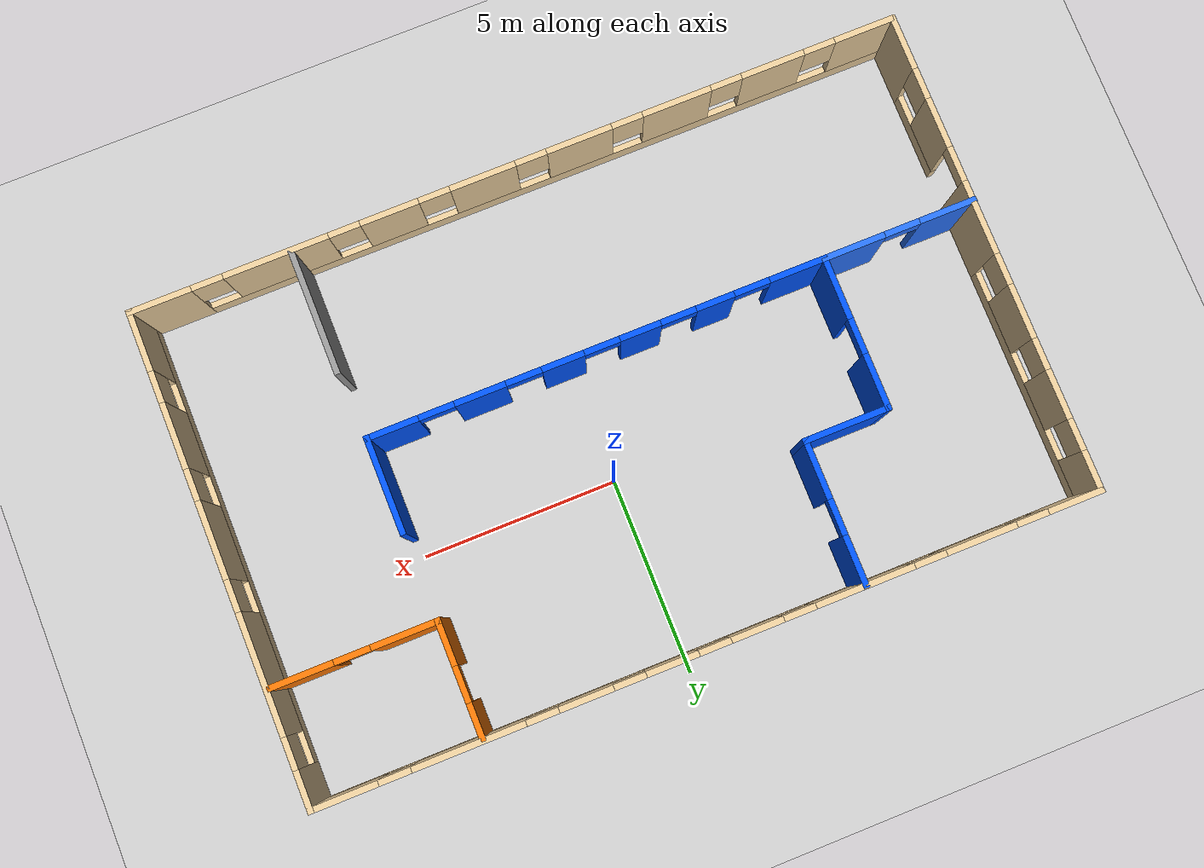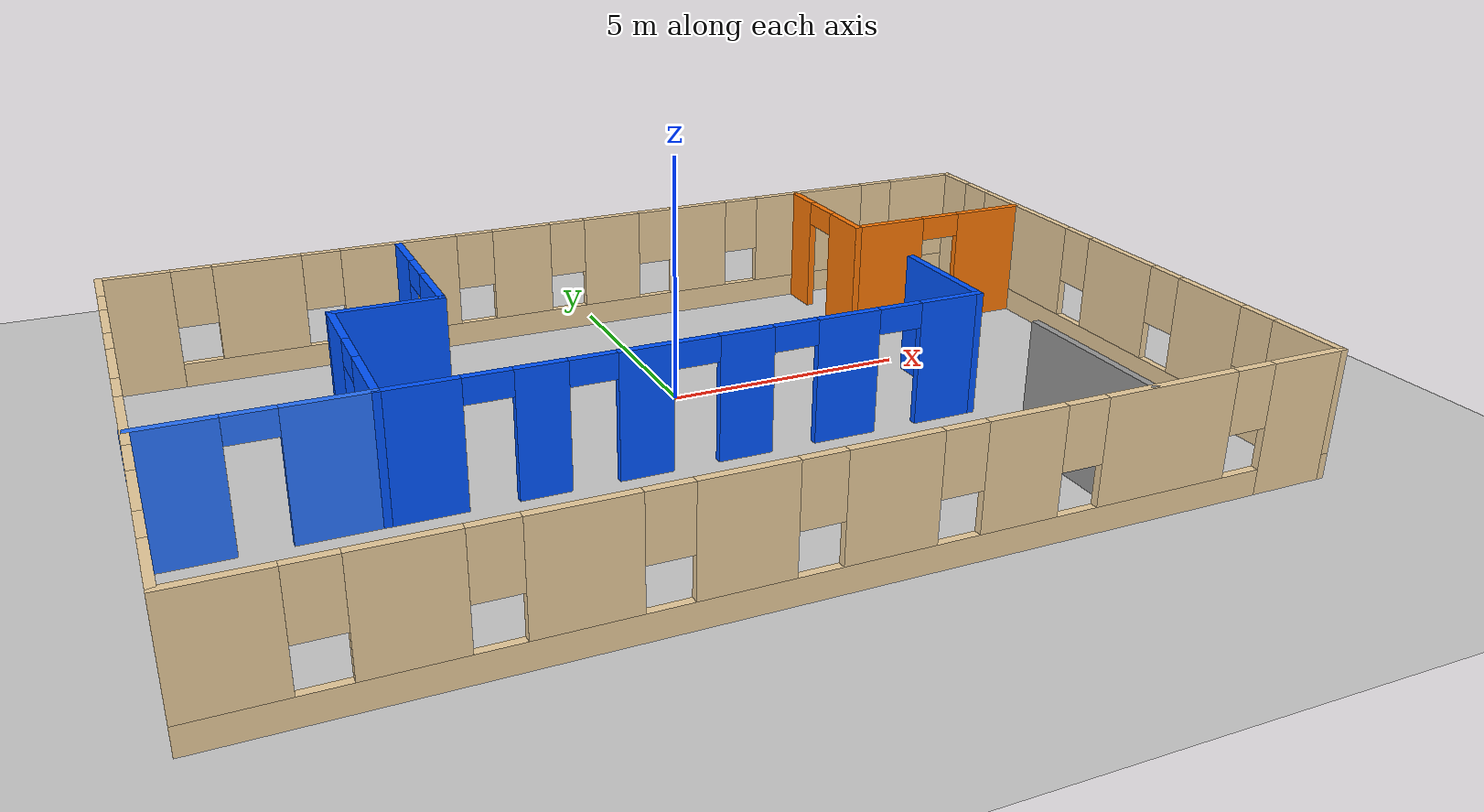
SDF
<sdf version="1.6">
 <world name="default">
  <model name="ground_plane">
   <static>1</static>
   <link name="link">
    <collision name="collision">
     <geometry><plane><normal>0 0 1</normal><size>100 100</size></plane></geometry>
     <surface>
      <contact><collide_bitmask>65535</collide_bitmask></contact>
      <friction><ode><mu>100</mu><mu2>50</mu2></ode></friction>
     </surface>
    </collision>
    <visual name="visual">
     <cast_shadows>0</cast_shadows>
     <geometry><plane><normal>0 0 1</normal><size>100 100</size></plane></geometry>
     <material>
      <script><uri>file://media/materials/scripts/gazebo.material</uri><name>Gazebo/Grey</name></script>
     </material>
    </visual>
   </link>
  </model>
  <model name="MyNewOffice">
   <pose>-0.570202 -1.58607 0 0 -0 0</pose>
   <link name="Wall_1">
    <pose>0.005308 6.175 0 0 0 -7e-06</pose>
    <visual name="Wall_1_Visual_0">
     <pose>-9.16553 0 1.25 0 -0 0</pose>
     <geometry><box><size>1.41894 0.15 2.5</size></box></geometry>
     <material>
      <script><uri>file://media/materials/scripts/gazebo.material</uri><name>Gazebo/Grey</name></script>
      <ambient>0.921569 0.807843 0.615686 1</ambient>
     </material>
     <meta><layer>0</layer></meta>
    </visual>
    <collision name="Wall_1_Collision_0">
     <geometry><box><size>1.41894 0.15 2.5</size></box></geometry>
     <pose>-9.16553 0 1.25 0 -0 0</pose>
    </collision>
    <visual name="Wall_1_Visual_1">
     <pose>0.709472 0 0.25 0 -0 0</pose>
     <geometry><box><size>18.3311 0.15 0.5</size></box></geometry>
     <material>
      <script><uri>file://media/materials/scripts/gazebo.material</uri><name>Gazebo/Grey</name></script>
      <ambient>0.921569 0.807843 0.615686 1</ambient>
     </material>
     <meta><layer>0</layer></meta>
    </visual>
    <collision name="Wall_1_Collision_1">
     <geometry><box><size>18.3311 0.15 0.5</size></box></geometry>
     <pose>0.709472 0 0.25 0 -0 0</pose>
    </collision>
    <visual name="Wall_1_Visual_2">
     <pose>-6.76938 0 1.5 0 -0 0</pose>
     <geometry><box><size>1.77334 0.15 2</size></box></geometry>
     <material>
      <script><uri>file://media/materials/scripts/gazebo.material</uri><name>Gazebo/Grey</name></script>
      <ambient>0.921569 0.807843 0.615686 1</ambient>
     </material>
     <meta><layer>0</layer></meta>
    </visual>
    <collision name="Wall_1_Collision_2">
     <geometry><box><size>1.77334 0.15 2</size></box></geometry>
     <pose>-6.76938 0 1.5 0 -0 0</pose>
    </collision>
    <visual name="Wall_1_Visual_3">
     <pose>-3.84513 0 1.5 0 -0 0</pose>
     <geometry><box><size>2.47517 0.15 2</size></box></geometry>
     <material>
      <script><uri>file://media/materials/scripts/gazebo.material</uri><name>Gazebo/Grey</name></script>
      <ambient>0.921569 0.807843 0.615686 1</ambient>
     </material>
     <meta><layer>0</layer></meta>
    </visual>
    <collision name="Wall_1_Collision_3">
     <geometry><box><size>2.47517 0.15 2</size></box></geometry>
     <pose>-3.84513 0 1.5 0 -0 0</pose>
    </collision>
    <visual name="Wall_1_Visual_4">
     <pose>-1.15481 0 1.5 0 -0 0</pose>
     <geometry><box><size>1.30546 0.15 2</size></box></geometry>
     <material>
      <script><uri>file://media/materials/scripts/gazebo.material</uri><name>Gazebo/Grey</name></script>
      <ambient>0.921569 0.807843 0.615686 1</ambient>
     </material>
     <meta><layer>0</layer></meta>
    </visual>
    <collision name="Wall_1_Collision_4">
     <geometry><box><size>1.30546 0.15 2</size></box></geometry>
     <pose>-1.15481 0 1.5 0 -0 0</pose>
    </collision>
    <visual name="Wall_1_Visual_5">
     <pose>0.950655 0 1.5 0 -0 0</pose>
     <geometry><box><size>1.30547 0.15 2</size></box></geometry>
     <material>
      <script><uri>file://media/materials/scripts/gazebo.material</uri><name>Gazebo/Grey</name></script>
      <ambient>0.921569 0.807843 0.615686 1</ambient>
     </material>
     <meta><layer>0</layer></meta>
    </visual>
    <collision name="Wall_1_Collision_5">
     <geometry><box><size>1.30547 0.15 2</size></box></geometry>
     <pose>0.950655 0 1.5 0 -0 0</pose>
    </collision>
    <visual name="Wall_1_Visual_6">
     <pose>3.07951 0 1.5 0 -0 0</pose>
     <geometry><box><size>1.35225 0.15 2</size></box></geometry>
     <material>
      <script><uri>file://media/materials/scripts/gazebo.material</uri><name>Gazebo/Grey</name></script>
      <ambient>0.921569 0.807843 0.615686 1</ambient>
     </material>
     <meta><layer>0</layer></meta>
    </visual>
    <collision name="Wall_1_Collision_6">
     <geometry><box><size>1.35225 0.15 2</size></box></geometry>
     <pose>3.07951 0 1.5 0 -0 0</pose>
    </collision>
    <visual name="Wall_1_Visual_7">
     <pose>5.95698 0 1.5 0 -0 0</pose>
     <geometry><box><size>2.80268 0.15 2</size></box></geometry>
     <material>
      <script><uri>file://media/materials/scripts/gazebo.material</uri><name>Gazebo/Grey</name></script>
      <ambient>0.921569 0.807843 0.615686 1</ambient>
     </material>
     <meta><layer>0</layer></meta>
    </visual>
    <collision name="Wall_1_Collision_7">
     <geometry><box><size>2.80268 0.15 2</size></box></geometry>
     <pose>5.95698 0 1.5 0 -0 0</pose>
    </collision>
    <visual name="Wall_1_Visual_8">
     <pose>9.01666 0 1.5 0 -0 0</pose>
     <geometry><box><size>1.71668 0.15 2</size></box></geometry>
     <material>
      <script><uri>file://media/materials/scripts/gazebo.material</uri><name>Gazebo/Grey</name></script>
      <ambient>0.921569 0.807843 0.615686 1</ambient>
     </material>
     <meta><layer>0</layer></meta>
    </visual>
    <collision name="Wall_1_Collision_8">
     <geometry><box><size>1.71668 0.15 2</size></box></geometry>
     <pose>9.01666 0 1.5 0 -0 0</pose>
    </collision>
    <visual name="Wall_1_Visual_9">
     <pose>-8.05606 0 1.9 0 -0 0</pose>
     <geometry><box><size>0.8 0.15 1.2</size></box></geometry>
     <material>
      <script><uri>file://media/materials/scripts/gazebo.material</uri><name>Gazebo/Grey</name></script>
      <ambient>0.921569 0.807843 0.615686 1</ambient>
     </material>
     <meta><layer>0</layer></meta>
    </visual>
    <collision name="Wall_1_Collision_9">
     <geometry><box><size>0.8 0.15 1.2</size></box></geometry>
     <pose>-8.05606 0 1.9 0 -0 0</pose>
    </collision>
    <visual name="Wall_1_Visual_10">
     <pose>-5.48271 0 1.9 0 -0 0</pose>
     <geometry><box><size>0.8 0.15 1.2</size></box></geometry>
     <material>
      <script><uri>file://media/materials/scripts/gazebo.material</uri><name>Gazebo/Grey</name></script>
      <ambient>0.921569 0.807843 0.615686 1</ambient>
     </material>
     <meta><layer>0</layer></meta>
    </visual>
    <collision name="Wall_1_Collision_10">
     <geometry><box><size>0.8 0.15 1.2</size></box></geometry>
     <pose>-5.48271 0 1.9 0 -0 0</pose>
    </collision>
    <visual name="Wall_1_Visual_11">
     <pose>-2.20754 0 1.9 0 -0 0</pose>
     <geometry><box><size>0.8 0.15 1.2</size></box></geometry>
     <material>
      <script><uri>file://media/materials/scripts/gazebo.material</uri><name>Gazebo/Grey</name></script>
      <ambient>0.921569 0.807843 0.615686 1</ambient>
     </material>
     <meta><layer>0</layer></meta>
    </visual>
    <collision name="Wall_1_Collision_11">
     <geometry><box><size>0.8 0.15 1.2</size></box></geometry>
     <pose>-2.20754 0 1.9 0 -0 0</pose>
    </collision>
    <visual name="Wall_1_Visual_12">
     <pose>-0.102078 0 1.9 0 -0 0</pose>
     <geometry><box><size>0.8 0.15 1.2</size></box></geometry>
     <material>
      <script><uri>file://media/materials/scripts/gazebo.material</uri><name>Gazebo/Grey</name></script>
      <ambient>0.921569 0.807843 0.615686 1</ambient>
     </material>
     <meta><layer>0</layer></meta>
    </visual>
    <collision name="Wall_1_Collision_12">
     <geometry><box><size>0.8 0.15 1.2</size></box></geometry>
     <pose>-0.102078 0 1.9 0 -0 0</pose>
    </collision>
    <visual name="Wall_1_Visual_13">
     <pose>2.00339 0 1.9 0 -0 0</pose>
     <geometry><box><size>0.8 0.15 1.2</size></box></geometry>
     <material>
      <script><uri>file://media/materials/scripts/gazebo.material</uri><name>Gazebo/Grey</name></script>
      <ambient>0.921569 0.807843 0.615686 1</ambient>
     </material>
     <meta><layer>0</layer></meta>
    </visual>
    <collision name="Wall_1_Collision_13">
     <geometry><box><size>0.8 0.15 1.2</size></box></geometry>
     <pose>2.00339 0 1.9 0 -0 0</pose>
    </collision>
    <visual name="Wall_1_Visual_14">
     <pose>4.15564 0 1.9 0 -0 0</pose>
     <geometry><box><size>0.8 0.15 1.2</size></box></geometry>
     <material>
      <script><uri>file://media/materials/scripts/gazebo.material</uri><name>Gazebo/Grey</name></script>
      <ambient>0.921569 0.807843 0.615686 1</ambient>
     </material>
     <meta><layer>0</layer></meta>
    </visual>
    <collision name="Wall_1_Collision_14">
     <geometry><box><size>0.8 0.15 1.2</size></box></geometry>
     <pose>4.15564 0 1.9 0 -0 0</pose>
    </collision>
    <visual name="Wall_1_Visual_15">
     <pose>7.75832 0 1.9 0 -0 0</pose>
     <geometry><box><size>0.8 0.15 1.2</size></box></geometry>
     <material>
      <script><uri>file://media/materials/scripts/gazebo.material</uri><name>Gazebo/Grey</name></script>
      <ambient>0.921569 0.807843 0.615686 1</ambient>
     </material>
     <meta><layer>0</layer></meta>
    </visual>
    <collision name="Wall_1_Collision_15">
     <geometry><box><size>0.8 0.15 1.2</size></box></geometry>
     <pose>7.75832 0 1.9 0 -0 0</pose>
    </collision>
   </link>
   <link name="Wall_13">
    <pose>-3.85542 4.35663 0 0 0 -1.5708</pose>
    <visual name="Wall_13_Visual_0">
     <pose>-1.22116 0 1.25 0 -0 0</pose>
     <geometry><box><size>1.30769 0.15 2.5</size></box></geometry>
     <material>
      <script><uri>file://media/materials/scripts/gazebo.material</uri><name>Gazebo/Grey</name></script>
      <ambient>0 0.333333 1 1</ambient>
     </material>
     <meta><layer>0</layer></meta>
    </visual>
    <collision name="Wall_13_Collision_0">
     <geometry><box><size>1.30769 0.15 2.5</size></box></geometry>
     <pose>-1.22116 0 1.25 0 -0 0</pose>
    </collision>
    <visual name="Wall_13_Visual_1">
     <pose>1.10384 0 1.25 0 -0 0</pose>
     <geometry><box><size>1.54231 0.15 2.5</size></box></geometry>
     <material>
      <script><uri>file://media/materials/scripts/gazebo.material</uri><name>Gazebo/Grey</name></script>
      <ambient>0 0.333333 1 1</ambient>
     </material>
     <meta><layer>0</layer></meta>
    </visual>
    <collision name="Wall_13_Collision_1">
     <geometry><box><size>1.54231 0.15 2.5</size></box></geometry>
     <pose>1.10384 0 1.25 0 -0 0</pose>
    </collision>
    <visual name="Wall_13_Visual_2">
     <pose>-0.117314 0 2.25 0 -0 0</pose>
     <geometry><box><size>0.9 0.15 0.5</size></box></geometry>
     <material>
      <script><uri>file://media/materials/scripts/gazebo.material</uri><name>Gazebo/Grey</name></script>
      <ambient>0 0.333333 1 1</ambient>
     </material>
     <meta><layer>0</layer></meta>
    </visual>
    <collision name="Wall_13_Collision_2">
     <geometry><box><size>0.9 0.15 0.5</size></box></geometry>
     <pose>-0.117314 0 2.25 0 -0 0</pose>
    </collision>
   </link>
   <link name="Wall_14">
    <collision name="Wall_14_Collision">
     <geometry><box><size>2.25 0.15 2.5</size></box></geometry>
     <pose>0 0 1.25 0 -0 0</pose>
    </collision>
    <visual name="Wall_14_Visual">
     <pose>0 0 1.25 0 -0 0</pose>
     <geometry><box><size>2.25 0.15 2.5</size></box></geometry>
     <material>
      <script><uri>file://media/materials/scripts/gazebo.material</uri><name>Gazebo/Grey</name></script>
      <ambient>0 0.333333 1 1</ambient>
     </material>
     <meta><layer>0</layer></meta>
    </visual>
    <pose>-4.90542 2.55662 0 0 -0 3.14159</pose>
   </link>
   <link name="Wall_15">
    <pose>-5.95542 0.631625 0 0 0 -1.5708</pose>
    <visual name="Wall_15_Visual_0">
     <pose>-1.2711 0 1.25 0 -0 0</pose>
     <geometry><box><size>1.45781 0.15 2.5</size></box></geometry>
     <material>
      <script><uri>file://media/materials/scripts/gazebo.material</uri><name>Gazebo/Grey</name></script>
      <ambient>0 0.333333 1 1</ambient>
     </material>
     <meta><layer>0</layer></meta>
    </visual>
    <collision name="Wall_15_Collision_0">
     <geometry><box><size>1.45781 0.15 2.5</size></box></geometry>
     <pose>-1.2711 0 1.25 0 -0 0</pose>
    </collision>
    <visual name="Wall_15_Visual_1">
     <pose>1.17891 0 1.25 0 -0 0</pose>
     <geometry><box><size>1.64219 0.15 2.5</size></box></geometry>
     <material>
      <script><uri>file://media/materials/scripts/gazebo.material</uri><name>Gazebo/Grey</name></script>
      <ambient>0 0.333333 1 1</ambient>
     </material>
     <meta><layer>0</layer></meta>
    </visual>
    <collision name="Wall_15_Collision_1">
     <geometry><box><size>1.64219 0.15 2.5</size></box></geometry>
     <pose>1.17891 0 1.25 0 -0 0</pose>
    </collision>
    <visual name="Wall_15_Visual_2">
     <pose>-0.09219 0 2.25 0 -0 0</pose>
     <geometry><box><size>0.9 0.15 0.5</size></box></geometry>
     <material>
      <script><uri>file://media/materials/scripts/gazebo.material</uri><name>Gazebo/Grey</name></script>
      <ambient>0 0.333333 1 1</ambient>
     </material>
     <meta><layer>0</layer></meta>
    </visual>
    <collision name="Wall_15_Collision_2">
     <geometry><box><size>0.9 0.15 0.5</size></box></geometry>
     <pose>-0.09219 0 2.25 0 -0 0</pose>
    </collision>
   </link>
   <link name="Wall_16">
    <pose>-0.155416 -1.29337 0 0 -0 0</pose>
    <visual name="Wall_16_Visual_0">
     <pose>-5.12972 0 1.25 0 -0 0</pose>
     <geometry><box><size>1.49057 0.15 2.5</size></box></geometry>
     <material>
      <script><uri>file://media/materials/scripts/gazebo.material</uri><name>Gazebo/Grey</name></script>
      <ambient>0 0.333333 1 1</ambient>
     </material>
     <meta><layer>0</layer></meta>
    </visual>
    <collision name="Wall_16_Collision_0">
     <geometry><box><size>1.49057 0.15 2.5</size></box></geometry>
     <pose>-5.12972 0 1.25 0 -0 0</pose>
    </collision>
    <visual name="Wall_16_Visual_1">
     <pose>-2.9969 0 1.25 0 -0 0</pose>
     <geometry><box><size>0.975062 0.15 2.5</size></box></geometry>
     <material>
      <script><uri>file://media/materials/scripts/gazebo.material</uri><name>Gazebo/Grey</name></script>
      <ambient>0 0.333333 1 1</ambient>
     </material>
     <meta><layer>0</layer></meta>
    </visual>
    <collision name="Wall_16_Collision_1">
     <geometry><box><size>0.975062 0.15 2.5</size></box></geometry>
     <pose>-2.9969 0 1.25 0 -0 0</pose>
    </collision>
    <visual name="Wall_16_Visual_2">
     <pose>-1.08646 0 1.25 0 -0 0</pose>
     <geometry><box><size>1.04582 0.15 2.5</size></box></geometry>
     <material>
      <script><uri>file://media/materials/scripts/gazebo.material</uri><name>Gazebo/Grey</name></script>
      <ambient>0 0.333333 1 1</ambient>
     </material>
     <meta><layer>0</layer></meta>
    </visual>
    <collision name="Wall_16_Collision_2">
     <geometry><box><size>1.04582 0.15 2.5</size></box></geometry>
     <pose>-1.08646 0 1.25 0 -0 0</pose>
    </collision>
    <visual name="Wall_16_Visual_3">
     <pose>0.877051 0 1.25 0 -0 0</pose>
     <geometry><box><size>1.0812 0.15 2.5</size></box></geometry>
     <material>
      <script><uri>file://media/materials/scripts/gazebo.material</uri><name>Gazebo/Grey</name></script>
      <ambient>0 0.333333 1 1</ambient>
     </material>
     <meta><layer>0</layer></meta>
    </visual>
    <collision name="Wall_16_Collision_3">
     <geometry><box><size>1.0812 0.15 2.5</size></box></geometry>
     <pose>0.877051 0 1.25 0 -0 0</pose>
    </collision>
    <visual name="Wall_16_Visual_4">
     <pose>2.96438 0 1.25 0 -0 0</pose>
     <geometry><box><size>1.29347 0.15 2.5</size></box></geometry>
     <material>
      <script><uri>file://media/materials/scripts/gazebo.material</uri><name>Gazebo/Grey</name></script>
      <ambient>0 0.333333 1 1</ambient>
     </material>
     <meta><layer>0</layer></meta>
    </visual>
    <collision name="Wall_16_Collision_4">
     <geometry><box><size>1.29347 0.15 2.5</size></box></geometry>
     <pose>2.96438 0 1.25 0 -0 0</pose>
    </collision>
    <visual name="Wall_16_Visual_5">
     <pose>5.19306 0 1.25 0 -0 0</pose>
     <geometry><box><size>1.36388 0.15 2.5</size></box></geometry>
     <material>
      <script><uri>file://media/materials/scripts/gazebo.material</uri><name>Gazebo/Grey</name></script>
      <ambient>0 0.333333 1 1</ambient>
     </material>
     <meta><layer>0</layer></meta>
    </visual>
    <collision name="Wall_16_Collision_5">
     <geometry><box><size>1.36388 0.15 2.5</size></box></geometry>
     <pose>5.19306 0 1.25 0 -0 0</pose>
    </collision>
    <visual name="Wall_16_Visual_6">
     <pose>-3.93443 0 2.25 0 -0 0</pose>
     <geometry><box><size>0.9 0.15 0.5</size></box></geometry>
     <material>
      <script><uri>file://media/materials/scripts/gazebo.material</uri><name>Gazebo/Grey</name></script>
      <ambient>0 0.333333 1 1</ambient>
     </material>
     <meta><layer>0</layer></meta>
    </visual>
    <collision name="Wall_16_Collision_6">
     <geometry><box><size>0.9 0.15 0.5</size></box></geometry>
     <pose>-3.93443 0 2.25 0 -0 0</pose>
    </collision>
    <visual name="Wall_16_Visual_7">
     <pose>-2.05937 0 2.25 0 -0 0</pose>
     <geometry><box><size>0.9 0.15 0.5</size></box></geometry>
     <material>
      <script><uri>file://media/materials/scripts/gazebo.material</uri><name>Gazebo/Grey</name></script>
      <ambient>0 0.333333 1 1</ambient>
     </material>
     <meta><layer>0</layer></meta>
    </visual>
    <collision name="Wall_16_Collision_7">
     <geometry><box><size>0.9 0.15 0.5</size></box></geometry>
     <pose>-2.05937 0 2.25 0 -0 0</pose>
    </collision>
    <visual name="Wall_16_Visual_8">
     <pose>-0.113548 0 2.25 0 -0 0</pose>
     <geometry><box><size>0.9 0.15 0.5</size></box></geometry>
     <material>
      <script><uri>file://media/materials/scripts/gazebo.material</uri><name>Gazebo/Grey</name></script>
      <ambient>0 0.333333 1 1</ambient>
     </material>
     <meta><layer>0</layer></meta>
    </visual>
    <collision name="Wall_16_Collision_8">
     <geometry><box><size>0.9 0.15 0.5</size></box></geometry>
     <pose>-0.113548 0 2.25 0 -0 0</pose>
    </collision>
    <visual name="Wall_16_Visual_9">
     <pose>1.86765 0 2.25 0 -0 0</pose>
     <geometry><box><size>0.9 0.15 0.5</size></box></geometry>
     <material>
      <script><uri>file://media/materials/scripts/gazebo.material</uri><name>Gazebo/Grey</name></script>
      <ambient>0 0.333333 1 1</ambient>
     </material>
     <meta><layer>0</layer></meta>
    </visual>
    <collision name="Wall_16_Collision_9">
     <geometry><box><size>0.9 0.15 0.5</size></box></geometry>
     <pose>1.86765 0 2.25 0 -0 0</pose>
    </collision>
    <visual name="Wall_16_Visual_10">
     <pose>4.06112 0 2.25 0 -0 0</pose>
     <geometry><box><size>0.9 0.15 0.5</size></box></geometry>
     <material>
      <script><uri>file://media/materials/scripts/gazebo.material</uri><name>Gazebo/Grey</name></script>
      <ambient>0 0.333333 1 1</ambient>
     </material>
     <meta><layer>0</layer></meta>
    </visual>
    <collision name="Wall_16_Collision_10">
     <geometry><box><size>0.9 0.15 0.5</size></box></geometry>
     <pose>4.06112 0 2.25 0 -0 0</pose>
    </collision>
   </link>
   <link name="Wall_17">
    <collision name="Wall_17_Collision">
     <geometry><box><size>2.5 0.15 2.5</size></box></geometry>
     <pose>0 0 1.25 0 -0 0</pose>
    </collision>
    <visual name="Wall_17_Visual">
     <pose>0 0 1.25 0 -0 0</pose>
     <geometry><box><size>2.5 0.15 2.5</size></box></geometry>
     <material>
      <script><uri>file://media/materials/scripts/gazebo.material</uri><name>Gazebo/Grey</name></script>
      <ambient>0 0.333333 1 1</ambient>
     </material>
     <meta><layer>0</layer></meta>
    </visual>
    <pose>5.64458 -0.118375 0 0 -0 1.5708</pose>
   </link>
   <link name="Wall_2">
    <pose>9.80541 -6.5e-05 0 0 0 -1.5708</pose>
    <visual name="Wall_2_Visual_0">
     <pose>-5.73242 0 1.25 0 -0 0</pose>
     <geometry><box><size>1.03516 0.15 2.5</size></box></geometry>
     <material>
      <script><uri>file://media/materials/scripts/gazebo.material</uri><name>Gazebo/Grey</name></script>
      <ambient>0.921569 0.807843 0.615686 1</ambient>
     </material>
     <meta><layer>0</layer></meta>
    </visual>
    <collision name="Wall_2_Collision_0">
     <geometry><box><size>1.03516 0.15 2.5</size></box></geometry>
     <pose>-5.73242 0 1.25 0 -0 0</pose>
    </collision>
    <visual name="Wall_2_Visual_1">
     <pose>0.517579 0 0.25 0 -0 0</pose>
     <geometry><box><size>11.4648 0.15 0.5</size></box></geometry>
     <material>
      <script><uri>file://media/materials/scripts/gazebo.material</uri><name>Gazebo/Grey</name></script>
      <ambient>0.921569 0.807843 0.615686 1</ambient>
     </material>
     <meta><layer>0</layer></meta>
    </visual>
    <collision name="Wall_2_Collision_1">
     <geometry><box><size>11.4648 0.15 0.5</size></box></geometry>
     <pose>0.517579 0 0.25 0 -0 0</pose>
    </collision>
    <visual name="Wall_2_Visual_2">
     <pose>-2.89653 0 1.5 0 -0 0</pose>
     <geometry><box><size>3.03662 0.15 2</size></box></geometry>
     <material>
      <script><uri>file://media/materials/scripts/gazebo.material</uri><name>Gazebo/Grey</name></script>
      <ambient>0.921569 0.807843 0.615686 1</ambient>
     </material>
     <meta><layer>0</layer></meta>
    </visual>
    <collision name="Wall_2_Collision_2">
     <geometry><box><size>3.03662 0.15 2</size></box></geometry>
     <pose>-2.89653 0 1.5 0 -0 0</pose>
    </collision>
    <visual name="Wall_2_Visual_3">
     <pose>0.402032 0 1.5 0 -0 0</pose>
     <geometry><box><size>1.9605 0.15 2</size></box></geometry>
     <material>
      <script><uri>file://media/materials/scripts/gazebo.material</uri><name>Gazebo/Grey</name></script>
      <ambient>0.921569 0.807843 0.615686 1</ambient>
     </material>
     <meta><layer>0</layer></meta>
    </visual>
    <collision name="Wall_2_Collision_3">
     <geometry><box><size>1.9605 0.15 2</size></box></geometry>
     <pose>0.402032 0 1.5 0 -0 0</pose>
    </collision>
    <visual name="Wall_2_Visual_4">
     <pose>3.02217 0 1.5 0 -0 0</pose>
     <geometry><box><size>1.67977 0.15 2</size></box></geometry>
     <material>
      <script><uri>file://media/materials/scripts/gazebo.material</uri><name>Gazebo/Grey</name></script>
      <ambient>0.921569 0.807843 0.615686 1</ambient>
     </material>
     <meta><layer>0</layer></meta>
    </visual>
    <collision name="Wall_2_Collision_4">
     <geometry><box><size>1.67977 0.15 2</size></box></geometry>
     <pose>3.02217 0 1.5 0 -0 0</pose>
    </collision>
    <visual name="Wall_2_Visual_5">
     <pose>5.45603 0 1.5 0 -0 0</pose>
     <geometry><box><size>1.58795 0.15 2</size></box></geometry>
     <material>
      <script><uri>file://media/materials/scripts/gazebo.material</uri><name>Gazebo/Grey</name></script>
      <ambient>0.921569 0.807843 0.615686 1</ambient>
     </material>
     <meta><layer>0</layer></meta>
    </visual>
    <collision name="Wall_2_Collision_5">
     <geometry><box><size>1.58795 0.15 2</size></box></geometry>
     <pose>5.45603 0 1.5 0 -0 0</pose>
    </collision>
    <visual name="Wall_2_Visual_6">
     <pose>-4.81484 0 1.9 0 -0 0</pose>
     <geometry><box><size>0.8 0.15 1.2</size></box></geometry>
     <material>
      <script><uri>file://media/materials/scripts/gazebo.material</uri><name>Gazebo/Grey</name></script>
      <ambient>0.921569 0.807843 0.615686 1</ambient>
     </material>
     <meta><layer>0</layer></meta>
    </visual>
    <collision name="Wall_2_Collision_6">
     <geometry><box><size>0.8 0.15 1.2</size></box></geometry>
     <pose>-4.81484 0 1.9 0 -0 0</pose>
    </collision>
    <visual name="Wall_2_Visual_7">
     <pose>-0.978217 0 1.9 0 -0 0</pose>
     <geometry><box><size>0.8 0.15 1.2</size></box></geometry>
     <material>
      <script><uri>file://media/materials/scripts/gazebo.material</uri><name>Gazebo/Grey</name></script>
      <ambient>0.921569 0.807843 0.615686 1</ambient>
     </material>
     <meta><layer>0</layer></meta>
    </visual>
    <collision name="Wall_2_Collision_7">
     <geometry><box><size>0.8 0.15 1.2</size></box></geometry>
     <pose>-0.978217 0 1.9 0 -0 0</pose>
    </collision>
    <visual name="Wall_2_Visual_8">
     <pose>1.78228 0 1.9 0 -0 0</pose>
     <geometry><box><size>0.8 0.15 1.2</size></box></geometry>
     <material>
      <script><uri>file://media/materials/scripts/gazebo.material</uri><name>Gazebo/Grey</name></script>
      <ambient>0.921569 0.807843 0.615686 1</ambient>
     </material>
     <meta><layer>0</layer></meta>
    </visual>
    <collision name="Wall_2_Collision_8">
     <geometry><box><size>0.8 0.15 1.2</size></box></geometry>
     <pose>1.78228 0 1.9 0 -0 0</pose>
    </collision>
    <visual name="Wall_2_Visual_9">
     <pose>4.26205 0 1.9 0 -0 0</pose>
     <geometry><box><size>0.8 0.15 1.2</size></box></geometry>
     <material>
      <script><uri>file://media/materials/scripts/gazebo.material</uri><name>Gazebo/Grey</name></script>
      <ambient>0.921569 0.807843 0.615686 1</ambient>
     </material>
     <meta><layer>0</layer></meta>
    </visual>
    <collision name="Wall_2_Collision_9">
     <geometry><box><size>0.8 0.15 1.2</size></box></geometry>
     <pose>4.26205 0 1.9 0 -0 0</pose>
    </collision>
   </link>
   <link name="Wall_20">
    <pose>5.61119 4.69117 0 0 0 -1.5708</pose>
    <visual name="Wall_20_Visual_0">
     <pose>-1.0368 0 1.25 0 -0 0</pose>
     <geometry><box><size>0.926393 0.15 2.5</size></box></geometry>
     <material>
      <script><uri>file://media/materials/scripts/gazebo.material</uri><name>Gazebo/Grey</name></script>
      <ambient>0.996078 0.47451 0.0196078 1</ambient>
     </material>
     <meta><layer>0</layer></meta>
    </visual>
    <collision name="Wall_20_Collision_0">
     <geometry><box><size>0.926393 0.15 2.5</size></box></geometry>
     <pose>-1.0368 0 1.25 0 -0 0</pose>
    </collision>
    <visual name="Wall_20_Visual_1">
     <pose>0.913196 0 1.25 0 -0 0</pose>
     <geometry><box><size>1.17361 0.15 2.5</size></box></geometry>
     <material>
      <script><uri>file://media/materials/scripts/gazebo.material</uri><name>Gazebo/Grey</name></script>
      <ambient>0.996078 0.47451 0.0196078 1</ambient>
     </material>
     <meta><layer>0</layer></meta>
    </visual>
    <collision name="Wall_20_Collision_1">
     <geometry><box><size>1.17361 0.15 2.5</size></box></geometry>
     <pose>0.913196 0 1.25 0 -0 0</pose>
    </collision>
    <visual name="Wall_20_Visual_2">
     <pose>-0.123607 0 2.25 0 -0 0</pose>
     <geometry><box><size>0.9 0.15 0.5</size></box></geometry>
     <material>
      <script><uri>file://media/materials/scripts/gazebo.material</uri><name>Gazebo/Grey</name></script>
      <ambient>0.996078 0.47451 0.0196078 1</ambient>
     </material>
     <meta><layer>0</layer></meta>
    </visual>
    <collision name="Wall_20_Collision_2">
     <geometry><box><size>0.9 0.15 0.5</size></box></geometry>
     <pose>-0.123607 0 2.25 0 -0 0</pose>
    </collision>
   </link>
   <link name="Wall_21">
    <pose>7.66119 3.26617 0 0 -0 0</pose>
    <visual name="Wall_21_Visual_0">
     <pose>-1.25967 0 1.25 0 -0 0</pose>
     <geometry><box><size>1.73065 0.15 2.5</size></box></geometry>
     <material>
      <script><uri>file://media/materials/scripts/gazebo.material</uri><name>Gazebo/Grey</name></script>
      <ambient>0.996078 0.47451 0.0196078 1</ambient>
     </material>
     <meta><layer>0</layer></meta>
    </visual>
    <collision name="Wall_21_Collision_0">
     <geometry><box><size>1.73065 0.15 2.5</size></box></geometry>
     <pose>-1.25967 0 1.25 0 -0 0</pose>
    </collision>
    <visual name="Wall_21_Visual_1">
     <pose>1.31533 0 1.25 0 -0 0</pose>
     <geometry><box><size>1.61935 0.15 2.5</size></box></geometry>
     <material>
      <script><uri>file://media/materials/scripts/gazebo.material</uri><name>Gazebo/Grey</name></script>
      <ambient>0.996078 0.47451 0.0196078 1</ambient>
     </material>
     <meta><layer>0</layer></meta>
    </visual>
    <collision name="Wall_21_Collision_1">
     <geometry><box><size>1.61935 0.15 2.5</size></box></geometry>
     <pose>1.31533 0 1.25 0 -0 0</pose>
    </collision>
    <visual name="Wall_21_Visual_2">
     <pose>0.055654 0 2.25 0 -0 0</pose>
     <geometry><box><size>0.9 0.15 0.5</size></box></geometry>
     <material>
      <script><uri>file://media/materials/scripts/gazebo.material</uri><name>Gazebo/Grey</name></script>
      <ambient>0.996078 0.47451 0.0196078 1</ambient>
     </material>
     <meta><layer>0</layer></meta>
    </visual>
    <collision name="Wall_21_Collision_2">
     <geometry><box><size>0.9 0.15 0.5</size></box></geometry>
     <pose>0.055654 0 2.25 0 -0 0</pose>
    </collision>
   </link>
   <link name="Wall_23">
    <collision name="Wall_23_Collision">
     <geometry><box><size>3.25 0.15 2.5</size></box></geometry>
     <pose>0 0 1.25 0 -0 0</pose>
    </collision>
    <visual name="Wall_23_Visual">
     <pose>0 0 1.25 0 -0 0</pose>
     <geometry><box><size>3.25 0.15 2.5</size></box></geometry>
     <material>
      <script><uri>file://media/materials/scripts/gazebo.material</uri><name>Gazebo/Grey</name></script>
      <ambient>1 1 1 1</ambient>
     </material>
     <meta><layer>0</layer></meta>
    </visual>
    <pose>5.74539 -4.58962 0 0 -0 1.5708</pose>
   </link>
   <link name="Wall_27">
    <pose>-7.88042 -1.29337 0 0 -0 3.14159</pose>
    <visual name="Wall_27_Visual_0">
     <pose>-1.18662 0 1.25 0 -0 0</pose>
     <geometry><box><size>1.62676 0.15 2.5</size></box></geometry>
     <material>
      <script><uri>file://media/materials/scripts/gazebo.material</uri><name>Gazebo/Grey</name></script>
      <ambient>0.160784 0.454902 1 1</ambient>
     </material>
     <meta><layer>0</layer></meta>
    </visual>
    <collision name="Wall_27_Collision_0">
     <geometry><box><size>1.62676 0.15 2.5</size></box></geometry>
     <pose>-1.18662 0 1.25 0 -0 0</pose>
    </collision>
    <visual name="Wall_27_Visual_1">
     <pose>1.26338 0 1.25 0 -0 0</pose>
     <geometry><box><size>1.47324 0.15 2.5</size></box></geometry>
     <material>
      <script><uri>file://media/materials/scripts/gazebo.material</uri><name>Gazebo/Grey</name></script>
      <ambient>0.160784 0.454902 1 1</ambient>
     </material>
     <meta><layer>0</layer></meta>
    </visual>
    <collision name="Wall_27_Collision_1">
     <geometry><box><size>1.47324 0.15 2.5</size></box></geometry>
     <pose>1.26338 0 1.25 0 -0 0</pose>
    </collision>
    <visual name="Wall_27_Visual_2">
     <pose>0.076756 0 2.25 0 -0 0</pose>
     <geometry><box><size>0.9 0.15 0.5</size></box></geometry>
     <material>
      <script><uri>file://media/materials/scripts/gazebo.material</uri><name>Gazebo/Grey</name></script>
      <ambient>0.160784 0.454902 1 1</ambient>
     </material>
     <meta><layer>0</layer></meta>
    </visual>
    <collision name="Wall_27_Collision_2">
     <geometry><box><size>0.9 0.15 0.5</size></box></geometry>
     <pose>0.076756 0 2.25 0 -0 0</pose>
    </collision>
   </link>
   <link name="Wall_3">
    <pose>0.005308 -6.175 0 0 -0 3.14159</pose>
    <visual name="Wall_3_Visual_0">
     <pose>-9.0635 0 1.25 0 -0 0</pose>
     <geometry><box><size>1.62321 0.15 2.5</size></box></geometry>
     <material>
      <script><uri>file://media/materials/scripts/gazebo.material</uri><name>Gazebo/Grey</name></script>
      <ambient>0.921569 0.807843 0.615686 1</ambient>
     </material>
     <meta><layer>0</layer></meta>
    </visual>
    <collision name="Wall_3_Collision_0">
     <geometry><box><size>1.62321 0.15 2.5</size></box></geometry>
     <pose>-9.0635 0 1.25 0 -0 0</pose>
    </collision>
    <visual name="Wall_3_Visual_1">
     <pose>0.811603 0 0.25 0 -0 0</pose>
     <geometry><box><size>18.127 0.15 0.5</size></box></geometry>
     <material>
      <script><uri>file://media/materials/scripts/gazebo.material</uri><name>Gazebo/Grey</name></script>
      <ambient>0.921569 0.807843 0.615686 1</ambient>
     </material>
     <meta><layer>0</layer></meta>
    </visual>
    <collision name="Wall_3_Collision_1">
     <geometry><box><size>18.127 0.15 0.5</size></box></geometry>
     <pose>0.811603 0 0.25 0 -0 0</pose>
    </collision>
    <visual name="Wall_3_Visual_2">
     <pose>-6.12074 0 1.5 0 -0 0</pose>
     <geometry><box><size>2.66232 0.15 2</size></box></geometry>
     <material>
      <script><uri>file://media/materials/scripts/gazebo.material</uri><name>Gazebo/Grey</name></script>
      <ambient>0.921569 0.807843 0.615686 1</ambient>
     </material>
     <meta><layer>0</layer></meta>
    </visual>
    <collision name="Wall_3_Collision_2">
     <geometry><box><size>2.66232 0.15 2</size></box></geometry>
     <pose>-6.12074 0 1.5 0 -0 0</pose>
    </collision>
    <visual name="Wall_3_Visual_3">
     <pose>-3.24327 0 1.5 0 -0 0</pose>
     <geometry><box><size>1.49262 0.15 2</size></box></geometry>
     <material>
      <script><uri>file://media/materials/scripts/gazebo.material</uri><name>Gazebo/Grey</name></script>
      <ambient>0.921569 0.807843 0.615686 1</ambient>
     </material>
     <meta><layer>0</layer></meta>
    </visual>
    <collision name="Wall_3_Collision_3">
     <geometry><box><size>1.49262 0.15 2</size></box></geometry>
     <pose>-3.24327 0 1.5 0 -0 0</pose>
    </collision>
    <visual name="Wall_3_Visual_4">
     <pose>-0.857078 0 1.5 0 -0 0</pose>
     <geometry><box><size>1.67977 0.15 2</size></box></geometry>
     <material>
      <script><uri>file://media/materials/scripts/gazebo.material</uri><name>Gazebo/Grey</name></script>
      <ambient>0.921569 0.807843 0.615686 1</ambient>
     </material>
     <meta><layer>0</layer></meta>
    </visual>
    <collision name="Wall_3_Collision_4">
     <geometry><box><size>1.67977 0.15 2</size></box></geometry>
     <pose>-0.857078 0 1.5 0 -0 0</pose>
    </collision>
    <visual name="Wall_3_Visual_5">
     <pose>1.62269 0 1.5 0 -0 0</pose>
     <geometry><box><size>1.67977 0.15 2</size></box></geometry>
     <material>
      <script><uri>file://media/materials/scripts/gazebo.material</uri><name>Gazebo/Grey</name></script>
      <ambient>0.921569 0.807843 0.615686 1</ambient>
     </material>
     <meta><layer>0</layer></meta>
    </visual>
    <collision name="Wall_3_Collision_5">
     <geometry><box><size>1.67977 0.15 2</size></box></geometry>
     <pose>1.62269 0 1.5 0 -0 0</pose>
    </collision>
    <visual name="Wall_3_Visual_6">
     <pose>4.14925 0 1.5 0 -0 0</pose>
     <geometry><box><size>1.77334 0.15 2</size></box></geometry>
     <material>
      <script><uri>file://media/materials/scripts/gazebo.material</uri><name>Gazebo/Grey</name></script>
      <ambient>0.921569 0.807843 0.615686 1</ambient>
     </material>
     <meta><layer>0</layer></meta>
    </visual>
    <collision name="Wall_3_Collision_6">
     <geometry><box><size>1.77334 0.15 2</size></box></geometry>
     <pose>4.14925 0 1.5 0 -0 0</pose>
    </collision>
    <visual name="Wall_3_Visual_7">
     <pose>6.65241 0 1.5 0 -0 0</pose>
     <geometry><box><size>1.63298 0.15 2</size></box></geometry>
     <material>
      <script><uri>file://media/materials/scripts/gazebo.material</uri><name>Gazebo/Grey</name></script>
      <ambient>0.921569 0.807843 0.615686 1</ambient>
     </material>
     <meta><layer>0</layer></meta>
    </visual>
    <collision name="Wall_3_Collision_7">
     <geometry><box><size>1.63298 0.15 2</size></box></geometry>
     <pose>6.65241 0 1.5 0 -0 0</pose>
    </collision>
    <visual name="Wall_3_Visual_8">
     <pose>9.07201 0 1.5 0 -0 0</pose>
     <geometry><box><size>1.6062 0.15 2</size></box></geometry>
     <material>
      <script><uri>file://media/materials/scripts/gazebo.material</uri><name>Gazebo/Grey</name></script>
      <ambient>0.921569 0.807843 0.615686 1</ambient>
     </material>
     <meta><layer>0</layer></meta>
    </visual>
    <collision name="Wall_3_Collision_8">
     <geometry><box><size>1.6062 0.15 2</size></box></geometry>
     <pose>9.07201 0 1.5 0 -0 0</pose>
    </collision>
    <visual name="Wall_3_Visual_9">
     <pose>-7.8519 0 1.9 0 -0 0</pose>
     <geometry><box><size>0.8 0.15 1.2</size></box></geometry>
     <material>
      <script><uri>file://media/materials/scripts/gazebo.material</uri><name>Gazebo/Grey</name></script>
      <ambient>0.921569 0.807843 0.615686 1</ambient>
     </material>
     <meta><layer>0</layer></meta>
    </visual>
    <collision name="Wall_3_Collision_9">
     <geometry><box><size>0.8 0.15 1.2</size></box></geometry>
     <pose>-7.8519 0 1.9 0 -0 0</pose>
    </collision>
    <visual name="Wall_3_Visual_10">
     <pose>-4.38958 0 1.9 0 -0 0</pose>
     <geometry><box><size>0.8 0.15 1.2</size></box></geometry>
     <material>
      <script><uri>file://media/materials/scripts/gazebo.material</uri><name>Gazebo/Grey</name></script>
      <ambient>0.921569 0.807843 0.615686 1</ambient>
     </material>
     <meta><layer>0</layer></meta>
    </visual>
    <collision name="Wall_3_Collision_10">
     <geometry><box><size>0.8 0.15 1.2</size></box></geometry>
     <pose>-4.38958 0 1.9 0 -0 0</pose>
    </collision>
    <visual name="Wall_3_Visual_11">
     <pose>-2.09696 0 1.9 0 -0 0</pose>
     <geometry><box><size>0.8 0.15 1.2</size></box></geometry>
     <material>
      <script><uri>file://media/materials/scripts/gazebo.material</uri><name>Gazebo/Grey</name></script>
      <ambient>0.921569 0.807843 0.615686 1</ambient>
     </material>
     <meta><layer>0</layer></meta>
    </visual>
    <collision name="Wall_3_Collision_11">
     <geometry><box><size>0.8 0.15 1.2</size></box></geometry>
     <pose>-2.09696 0 1.9 0 -0 0</pose>
    </collision>
    <visual name="Wall_3_Visual_12">
     <pose>0.382807 0 1.9 0 -0 0</pose>
     <geometry><box><size>0.8 0.15 1.2</size></box></geometry>
     <material>
      <script><uri>file://media/materials/scripts/gazebo.material</uri><name>Gazebo/Grey</name></script>
      <ambient>0.921569 0.807843 0.615686 1</ambient>
     </material>
     <meta><layer>0</layer></meta>
    </visual>
    <collision name="Wall_3_Collision_12">
     <geometry><box><size>0.8 0.15 1.2</size></box></geometry>
     <pose>0.382807 0 1.9 0 -0 0</pose>
    </collision>
    <visual name="Wall_3_Visual_13">
     <pose>2.86258 0 1.9 0 -0 0</pose>
     <geometry><box><size>0.8 0.15 1.2</size></box></geometry>
     <material>
      <script><uri>file://media/materials/scripts/gazebo.material</uri><name>Gazebo/Grey</name></script>
      <ambient>0.921569 0.807843 0.615686 1</ambient>
     </material>
     <meta><layer>0</layer></meta>
    </visual>
    <collision name="Wall_3_Collision_13">
     <geometry><box><size>0.8 0.15 1.2</size></box></geometry>
     <pose>2.86258 0 1.9 0 -0 0</pose>
    </collision>
    <visual name="Wall_3_Visual_14">
     <pose>5.43592 0 1.9 0 -0 0</pose>
     <geometry><box><size>0.8 0.15 1.2</size></box></geometry>
     <material>
      <script><uri>file://media/materials/scripts/gazebo.material</uri><name>Gazebo/Grey</name></script>
      <ambient>0.921569 0.807843 0.615686 1</ambient>
     </material>
     <meta><layer>0</layer></meta>
    </visual>
    <collision name="Wall_3_Collision_14">
     <geometry><box><size>0.8 0.15 1.2</size></box></geometry>
     <pose>5.43592 0 1.9 0 -0 0</pose>
    </collision>
    <visual name="Wall_3_Visual_15">
     <pose>7.8689 0 1.9 0 -0 0</pose>
     <geometry><box><size>0.8 0.15 1.2</size></box></geometry>
     <material>
      <script><uri>file://media/materials/scripts/gazebo.material</uri><name>Gazebo/Grey</name></script>
      <ambient>0.921569 0.807843 0.615686 1</ambient>
     </material>
     <meta><layer>0</layer></meta>
    </visual>
    <collision name="Wall_3_Collision_15">
     <geometry><box><size>0.8 0.15 1.2</size></box></geometry>
     <pose>7.8689 0 1.9 0 -0 0</pose>
    </collision>
   </link>
   <link name="Wall_4">
    <pose>-9.7948 6.6e-05 0 0 -0 1.5708</pose>
    <visual name="Wall_4_Visual_0">
     <pose>-5.52624 0 1.25 0 -0 0</pose>
     <geometry><box><size>1.44739 0.15 2.5</size></box></geometry>
     <material>
      <script><uri>file://media/materials/scripts/gazebo.material</uri><name>Gazebo/Grey</name></script>
      <ambient>0.921569 0.807843 0.615686 1</ambient>
     </material>
     <meta><layer>0</layer></meta>
    </visual>
    <collision name="Wall_4_Collision_0">
     <geometry><box><size>1.44739 0.15 2.5</size></box></geometry>
     <pose>-5.52624 0 1.25 0 -0 0</pose>
    </collision>
    <visual name="Wall_4_Visual_1">
     <pose>-0.845043 0 1.25 0 -0 0</pose>
     <geometry><box><size>1.9105 0.15 2.5</size></box></geometry>
     <material>
      <script><uri>file://media/materials/scripts/gazebo.material</uri><name>Gazebo/Grey</name></script>
      <ambient>0.921569 0.807843 0.615686 1</ambient>
     </material>
     <meta><layer>0</layer></meta>
    </visual>
    <collision name="Wall_4_Collision_1">
     <geometry><box><size>1.9105 0.15 2.5</size></box></geometry>
     <pose>-0.845043 0 1.25 0 -0 0</pose>
    </collision>
    <visual name="Wall_4_Visual_2">
     <pose>-3.75142 0 0.25 0 -0 0</pose>
     <geometry><box><size>2.10225 0.15 0.5</size></box></geometry>
     <material>
      <script><uri>file://media/materials/scripts/gazebo.material</uri><name>Gazebo/Grey</name></script>
      <ambient>0.921569 0.807843 0.615686 1</ambient>
     </material>
     <meta><layer>0</layer></meta>
    </visual>
    <collision name="Wall_4_Collision_2">
     <geometry><box><size>2.10225 0.15 0.5</size></box></geometry>
     <pose>-3.75142 0 0.25 0 -0 0</pose>
    </collision>
    <visual name="Wall_4_Visual_3">
     <pose>3.18007 0 0.25 0 -0 0</pose>
     <geometry><box><size>6.13973 0.15 0.5</size></box></geometry>
     <material>
      <script><uri>file://media/materials/scripts/gazebo.material</uri><name>Gazebo/Grey</name></script>
      <ambient>0.921569 0.807843 0.615686 1</ambient>
     </material>
     <meta><layer>0</layer></meta>
    </visual>
    <collision name="Wall_4_Collision_3">
     <geometry><box><size>6.13973 0.15 0.5</size></box></geometry>
     <pose>3.18007 0 0.25 0 -0 0</pose>
    </collision>
    <visual name="Wall_4_Visual_4">
     <pose>-3.35142 0 1.5 0 -0 0</pose>
     <geometry><box><size>1.30225 0.15 2</size></box></geometry>
     <material>
      <script><uri>file://media/materials/scripts/gazebo.material</uri><name>Gazebo/Grey</name></script>
      <ambient>0.921569 0.807843 0.615686 1</ambient>
     </material>
     <meta><layer>0</layer></meta>
    </visual>
    <collision name="Wall_4_Collision_4">
     <geometry><box><size>1.30225 0.15 2</size></box></geometry>
     <pose>-3.35142 0 1.5 0 -0 0</pose>
    </collision>
    <visual name="Wall_4_Visual_5">
     <pose>-3.35142 0 1.5 0 -0 0</pose>
     <geometry><box><size>1.30225 0.15 2</size></box></geometry>
     <material>
      <script><uri>file://media/materials/scripts/gazebo.material</uri><name>Gazebo/Grey</name></script>
      <ambient>0.921569 0.807843 0.615686 1</ambient>
     </material>
     <meta><layer>0</layer></meta>
    </visual>
    <collision name="Wall_4_Collision_5">
     <geometry><box><size>1.30225 0.15 2</size></box></geometry>
     <pose>-3.35142 0 1.5 0 -0 0</pose>
    </collision>
    <visual name="Wall_4_Visual_6">
     <pose>1.60973 0 1.5 0 -0 0</pose>
     <geometry><box><size>1.39904 0.15 2</size></box></geometry>
     <material>
      <script><uri>file://media/materials/scripts/gazebo.material</uri><name>Gazebo/Grey</name></script>
      <ambient>0.921569 0.807843 0.615686 1</ambient>
     </material>
     <meta><layer>0</layer></meta>
    </visual>
    <collision name="Wall_4_Collision_6">
     <geometry><box><size>1.39904 0.15 2</size></box></geometry>
     <pose>1.60973 0 1.5 0 -0 0</pose>
    </collision>
    <visual name="Wall_4_Visual_7">
     <pose>3.73859 0 1.5 0 -0 0</pose>
     <geometry><box><size>1.25868 0.15 2</size></box></geometry>
     <material>
      <script><uri>file://media/materials/scripts/gazebo.material</uri><name>Gazebo/Grey</name></script>
      <ambient>0.921569 0.807843 0.615686 1</ambient>
     </material>
     <meta><layer>0</layer></meta>
    </visual>
    <collision name="Wall_4_Collision_7">
     <geometry><box><size>1.25868 0.15 2</size></box></geometry>
     <pose>3.73859 0 1.5 0 -0 0</pose>
    </collision>
    <visual name="Wall_4_Visual_8">
     <pose>5.70893 0 1.5 0 -0 0</pose>
     <geometry><box><size>1.08201 0.15 2</size></box></geometry>
     <material>
      <script><uri>file://media/materials/scripts/gazebo.material</uri><name>Gazebo/Grey</name></script>
      <ambient>0.921569 0.807843 0.615686 1</ambient>
     </material>
     <meta><layer>0</layer></meta>
    </visual>
    <collision name="Wall_4_Collision_8">
     <geometry><box><size>1.08201 0.15 2</size></box></geometry>
     <pose>5.70893 0 1.5 0 -0 0</pose>
    </collision>
    <visual name="Wall_4_Visual_9">
     <pose>-4.40254 0 1.9 0 -0 0</pose>
     <geometry><box><size>0.8 0.15 1.2</size></box></geometry>
     <material>
      <script><uri>file://media/materials/scripts/gazebo.material</uri><name>Gazebo/Grey</name></script>
      <ambient>0.921569 0.807843 0.615686 1</ambient>
     </material>
     <meta><layer>0</layer></meta>
    </visual>
    <collision name="Wall_4_Collision_9">
     <geometry><box><size>0.8 0.15 1.2</size></box></geometry>
     <pose>-4.40254 0 1.9 0 -0 0</pose>
    </collision>
    <visual name="Wall_4_Visual_10">
     <pose>0.510206 0 1.9 0 -0 0</pose>
     <geometry><box><size>0.8 0.15 1.2</size></box></geometry>
     <material>
      <script><uri>file://media/materials/scripts/gazebo.material</uri><name>Gazebo/Grey</name></script>
      <ambient>0.921569 0.807843 0.615686 1</ambient>
     </material>
     <meta><layer>0</layer></meta>
    </visual>
    <collision name="Wall_4_Collision_10">
     <geometry><box><size>0.8 0.15 1.2</size></box></geometry>
     <pose>0.510206 0 1.9 0 -0 0</pose>
    </collision>
    <visual name="Wall_4_Visual_11">
     <pose>2.70925 0 1.9 0 -0 0</pose>
     <geometry><box><size>0.8 0.15 1.2</size></box></geometry>
     <material>
      <script><uri>file://media/materials/scripts/gazebo.material</uri><name>Gazebo/Grey</name></script>
      <ambient>0.921569 0.807843 0.615686 1</ambient>
     </material>
     <meta><layer>0</layer></meta>
    </visual>
    <collision name="Wall_4_Collision_11">
     <geometry><box><size>0.8 0.15 1.2</size></box></geometry>
     <pose>2.70925 0 1.9 0 -0 0</pose>
    </collision>
    <visual name="Wall_4_Visual_12">
     <pose>4.76792 0 1.9 0 -0 0</pose>
     <geometry><box><size>0.8 0.15 1.2</size></box></geometry>
     <material>
      <script><uri>file://media/materials/scripts/gazebo.material</uri><name>Gazebo/Grey</name></script>
      <ambient>0.921569 0.807843 0.615686 1</ambient>
     </material>
     <meta><layer>0</layer></meta>
    </visual>
    <collision name="Wall_4_Collision_12">
     <geometry><box><size>0.8 0.15 1.2</size></box></geometry>
     <pose>4.76792 0 1.9 0 -0 0</pose>
    </collision>
    <visual name="Wall_4_Visual_13">
     <pose>-2.25029 0 2.25 0 -0 0</pose>
     <geometry><box><size>0.9 0.15 0.5</size></box></geometry>
     <material>
      <script><uri>file://media/materials/scripts/gazebo.material</uri><name>Gazebo/Grey</name></script>
      <ambient>0.921569 0.807843 0.615686 1</ambient>
     </material>
     <meta><layer>0</layer></meta>
    </visual>
    <collision name="Wall_4_Collision_13">
     <geometry><box><size>0.9 0.15 0.5</size></box></geometry>
     <pose>-2.25029 0 2.25 0 -0 0</pose>
    </collision>
    <visual name="Wall_4_Visual_14">
     <pose>-2.25029 0 2.25 0 -0 0</pose>
     <geometry><box><size>0.9 0.15 0.5</size></box></geometry>
     <material>
      <script><uri>file://media/materials/scripts/gazebo.material</uri><name>Gazebo/Grey</name></script>
      <ambient>0.921569 0.807843 0.615686 1</ambient>
     </material>
     <meta><layer>0</layer></meta>
    </visual>
    <collision name="Wall_4_Collision_14">
     <geometry><box><size>0.9 0.15 0.5</size></box></geometry>
     <pose>-2.25029 0 2.25 0 -0 0</pose>
    </collision>
   </link>
   <static>1</static>
  </model>
 </world>
</sdf>
